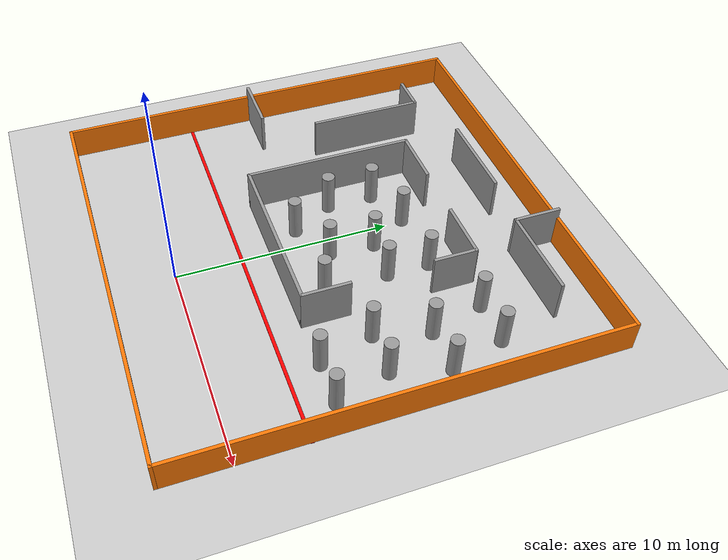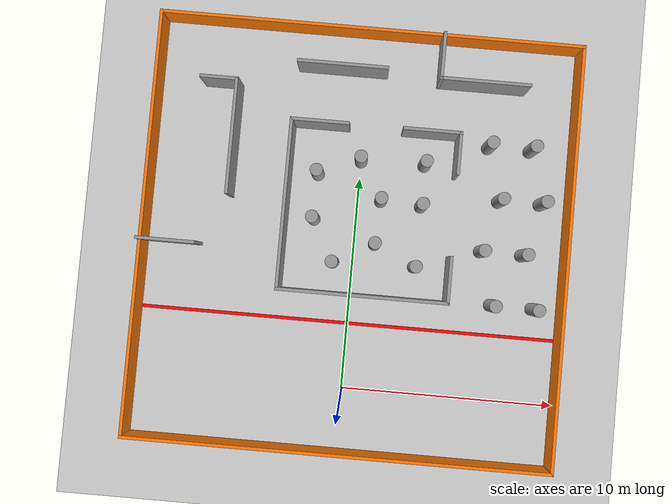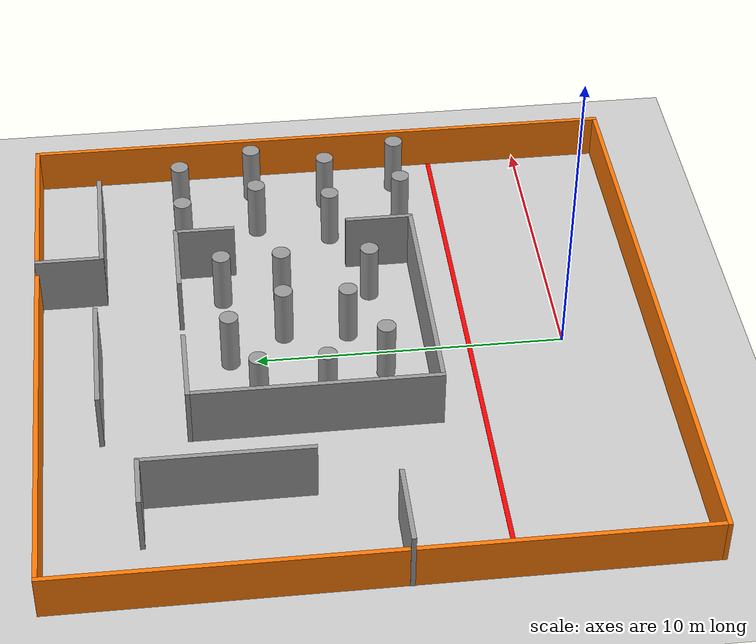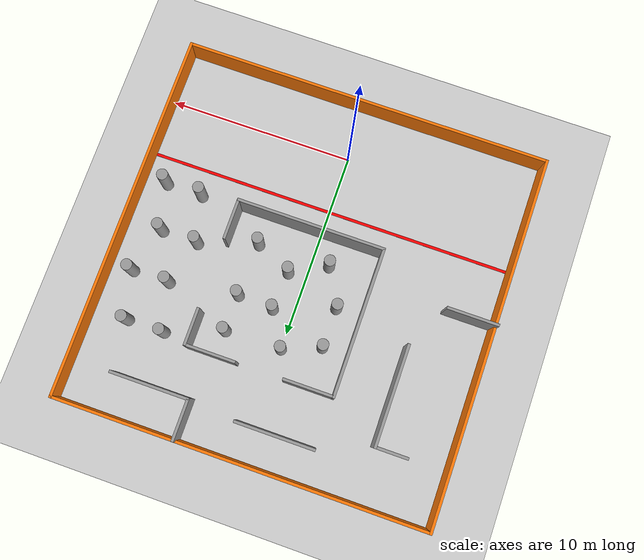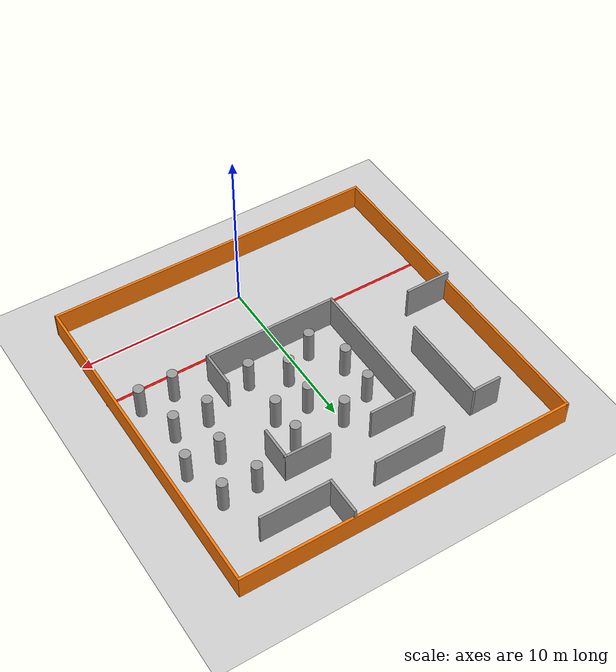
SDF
<sdf version="1.7">
 <world name="default">
  <light name="sun" type="directional">
   <pose>0 0 10 0 -0 0</pose>
   <diffuse>0.8 0.8 0.8 1</diffuse>
   <specular>0.2 0.2 0.2 1</specular>
   <attenuation>
    <range>1000</range>
    <constant>0.9</constant>
    <linear>0.01</linear>
    <quadratic>0.001</quadratic>
   </attenuation>
   <direction>-0.5 0.1 -0.9</direction>
   <spot><inner_angle>0</inner_angle><outer_angle>0</outer_angle><falloff>0</falloff></spot>
  </light>
  <model name="ground_plane">
   <static>1</static>
   <link name="link">
    <collision name="collision">
     <geometry><plane><normal>0 0 1</normal><size>100 100</size></plane></geometry>
     <surface>
      <contact><collide_bitmask>65535</collide_bitmask></contact>
      <friction><ode><mu>100</mu><mu2>50</mu2></ode></friction>
     </surface>
    </collision>
    <visual name="visual">
     <cast_shadows>0</cast_shadows>
     <geometry><plane><normal>0 0 1</normal><size>100 100</size></plane></geometry>
     <material>
      <script><uri>file://media/materials/scripts/gazebo.material</uri><name>Gazebo/Grey</name></script>
     </material>
    </visual>
   </link>
  </model>
  <gravity>0 0 -9.8</gravity>
  <magnetic_field>6e-06 2.3e-05 -4.2e-05</magnetic_field>
  <atmosphere type="adiabatic"/>
  <physics type="ode">
   <max_step_size>0.001</max_step_size>
   <real_time_factor>1</real_time_factor>
   <real_time_update_rate>1000</real_time_update_rate>
  </physics>
  <scene><ambient>0.4 0.4 0.4 1</ambient><background>0.7 0.7 0.7 1</background><shadows>1</shadows></scene>
  <spherical_coordinates>
   <surface_model>EARTH_WGS84</surface_model>
   <latitude_deg>0</latitude_deg>
   <longitude_deg>0</longitude_deg>
   <elevation>0</elevation>
   <heading_deg>0</heading_deg>
  </spherical_coordinates>
  <model name="SAFMC_WALL_similar">
   <pose>0.020465 7 0 0 -0 0</pose>
   <link name="Wall_0">
    <collision name="Wall_0_Collision">
     <geometry><box><size>20 0.15 1.5</size></box></geometry>
     <pose>0 0 0.75 0 -0 0</pose>
    </collision>
    <visual name="Wall_0_Visual">
     <pose>0 0 0.75 0 -0 0</pose>
     <geometry><box><size>20 0.15 1.5</size></box></geometry>
     <material>
      <script><uri>file://media/materials/scripts/gazebo.material</uri><name>Gazebo/Grey</name></script>
      <ambient>0.996078 0.47451 0.0196078 1</ambient>
     </material>
     <meta><layer>0</layer></meta>
    </visual>
    <pose>-0.003 -9.925 0 0 -0 0</pose>
   </link>
   <link name="Wall_10">
    <collision name="Wall_10_Collision">
     <geometry><box><size>2.75 0.15 2</size></box></geometry>
     <pose>0 0 1 0 -0 0</pose>
    </collision>
    <visual name="Wall_10_Visual">
     <pose>0 0 1 0 -0 0</pose>
     <geometry><box><size>2.75 0.15 2</size></box></geometry>
     <material>
      <script><uri>file://media/materials/scripts/gazebo.material</uri><name>Gazebo/Grey</name></script>
      <ambient>0 0 0 1</ambient>
     </material>
     <meta><layer>0</layer></meta>
    </visual>
    <pose>-8.642 -0.751 0 0 -0 0</pose>
   </link>
   <link name="Wall_12">
    <collision name="Wall_12_Collision">
     <geometry><box><size>1.75 0.15 2</size></box></geometry>
     <pose>0 0 1 0 -0 0</pose>
    </collision>
    <visual name="Wall_12_Visual">
     <pose>0 0 1 0 -0 0</pose>
     <geometry><box><size>1.75 0.15 2</size></box></geometry>
     <material>
      <script><uri>file://media/materials/scripts/gazebo.material</uri><name>Gazebo/Grey</name></script>
      <ambient>0 0 0 1</ambient>
     </material>
     <meta><layer>0</layer></meta>
    </visual>
    <pose>-6.88992 6.92788 0 0 -0 0</pose>
   </link>
   <link name="Wall_13">
    <collision name="Wall_13_Collision">
     <geometry><box><size>5.40588 0.15 2</size></box></geometry>
     <pose>0 0 1 0 -0 0</pose>
    </collision>
    <visual name="Wall_13_Visual">
     <pose>0 0 1 0 -0 0</pose>
     <geometry><box><size>5.40588 0.15 2</size></box></geometry>
     <material>
      <script><uri>file://media/materials/scripts/gazebo.material</uri><name>Gazebo/Grey</name></script>
      <ambient>0 0 0 1</ambient>
     </material>
     <meta><layer>0</layer></meta>
    </visual>
    <pose>-6.05047 4.29994 0 0 -0 -1.5708</pose>
   </link>
   <link name="Wall_15">
    <collision name="Wall_15_Collision">
     <geometry><box><size>2.25 0.15 2</size></box></geometry>
     <pose>0 0 1 0 -0 0</pose>
    </collision>
    <visual name="Wall_15_Visual">
     <pose>0 0 1 0 -0 0</pose>
     <geometry><box><size>2.25 0.15 2</size></box></geometry>
     <material>
      <script><uri>file://media/materials/scripts/gazebo.material</uri><name>Gazebo/Grey</name></script>
      <ambient>0 0 0 1</ambient>
     </material>
     <meta><layer>0</layer></meta>
    </visual>
    <pose>3.3575 8.83 0 0 -0 -1.5708</pose>
   </link>
   <link name="Wall_18">
    <collision name="Wall_18_Collision">
     <geometry><box><size>4.198 0.15 2</size></box></geometry>
     <pose>0 0 1 0 -0 0</pose>
    </collision>
    <visual name="Wall_18_Visual">
     <pose>0 0 1 0 -0 0</pose>
     <geometry><box><size>4.198 0.15 2</size></box></geometry>
     <material>
      <script><uri>file://media/materials/scripts/gazebo.material</uri><name>Gazebo/Grey</name></script>
      <ambient>0 0 0 1</ambient>
     </material>
     <meta><layer>0</layer></meta>
    </visual>
    <pose>5.416 7.78 0 0 -0 0</pose>
   </link>
   <link name="Wall_2">
    <collision name="Wall_2_Collision">
     <geometry><box><size>20 0.15 1.5</size></box></geometry>
     <pose>0 0 0.75 0 -0 0</pose>
    </collision>
    <visual name="Wall_2_Visual">
     <pose>0 0 0.75 0 -0 0</pose>
     <geometry><box><size>20 0.15 1.5</size></box></geometry>
     <material>
      <script><uri>file://media/materials/scripts/gazebo.material</uri><name>Gazebo/Grey</name></script>
      <ambient>0.996078 0.47451 0.0196078 1</ambient>
     </material>
     <meta><layer>0</layer></meta>
    </visual>
    <pose>-9.928 -0 0 0 -0 1.5708</pose>
   </link>
   <link name="Wall_20">
    <collision name="Wall_20_Collision">
     <geometry><box><size>4.25 0.15 2</size></box></geometry>
     <pose>0 0 1 0 -0 0</pose>
    </collision>
    <visual name="Wall_20_Visual">
     <pose>0 0 1 0 -0 0</pose>
     <geometry><box><size>4.25 0.15 2</size></box></geometry>
     <material>
      <script><uri>file://media/materials/scripts/gazebo.material</uri><name>Gazebo/Grey</name></script>
      <ambient>0 0 0 1</ambient>
     </material>
     <meta><layer>0</layer></meta>
    </visual>
    <pose>-1.2353 8.03112 0 0 -0 0</pose>
   </link>
   <link name="Wall_22">
    <collision name="Wall_22_Collision">
     <geometry><box><size>8 0.15 2</size></box></geometry>
     <pose>0 0 1 0 -0 0</pose>
    </collision>
    <visual name="Wall_22_Visual">
     <pose>0 0 1 0 -0 0</pose>
     <geometry><box><size>8 0.15 2</size></box></geometry>
     <material>
      <script><uri>file://media/materials/scripts/gazebo.material</uri><name>Gazebo/Grey</name></script>
      <ambient>0 0 0 1</ambient>
     </material>
     <meta><layer>0</layer></meta>
    </visual>
    <pose>-3.36412 1.386 0 0 -0 -1.5708</pose>
   </link>
   <link name="Wall_24">
    <collision name="Wall_24_Collision">
     <geometry><box><size>8 0.15 2</size></box></geometry>
     <pose>0 0 1 0 -0 0</pose>
    </collision>
    <visual name="Wall_24_Visual">
     <pose>0 0 1 0 -0 0</pose>
     <geometry><box><size>8 0.15 2</size></box></geometry>
     <material>
      <script><uri>file://media/materials/scripts/gazebo.material</uri><name>Gazebo/Grey</name></script>
      <ambient>0 0 0 1</ambient>
     </material>
     <meta><layer>0</layer></meta>
    </visual>
    <pose>0.560883 -2.539 0 0 -0 0</pose>
   </link>
   <link name="Wall_26">
    <collision name="Wall_26_Collision">
     <geometry><box><size>2.25 0.15 2</size></box></geometry>
     <pose>0 0 1 0 -0 0</pose>
    </collision>
    <visual name="Wall_26_Visual">
     <pose>0 0 1 0 -0 0</pose>
     <geometry><box><size>2.25 0.15 2</size></box></geometry>
     <material>
      <script><uri>file://media/materials/scripts/gazebo.material</uri><name>Gazebo/Grey</name></script>
      <ambient>0 0 0 1</ambient>
     </material>
     <meta><layer>0</layer></meta>
    </visual>
    <pose>4.48588 -1.489 0 0 -0 1.5708</pose>
   </link>
   <link name="Wall_28">
    <collision name="Wall_28_Collision">
     <geometry><box><size>2.75 0.15 2</size></box></geometry>
     <pose>0 0 1 0 -0 0</pose>
    </collision>
    <visual name="Wall_28_Visual">
     <pose>0 0 1 0 -0 0</pose>
     <geometry><box><size>2.75 0.15 2</size></box></geometry>
     <material>
      <script><uri>file://media/materials/scripts/gazebo.material</uri><name>Gazebo/Grey</name></script>
      <ambient>0 0 0 1</ambient>
     </material>
     <meta><layer>0</layer></meta>
    </visual>
    <pose>-2.06412 5.311 0 0 -0 0</pose>
   </link>
   <link name="Wall_30">
    <collision name="Wall_30_Collision">
     <geometry><box><size>2.75 0.15 2</size></box></geometry>
     <pose>0 0 1 0 -0 0</pose>
    </collision>
    <visual name="Wall_30_Visual">
     <pose>0 0 1 0 -0 0</pose>
     <geometry><box><size>2.75 0.15 2</size></box></geometry>
     <material>
      <script><uri>file://media/materials/scripts/gazebo.material</uri><name>Gazebo/Grey</name></script>
      <ambient>0 0 0 1</ambient>
     </material>
     <meta><layer>0</layer></meta>
    </visual>
    <pose>3.16318 5.3137 0 0 -0 0</pose>
   </link>
   <link name="Wall_31">
    <collision name="Wall_31_Collision">
     <geometry><box><size>2 0.15 2</size></box></geometry>
     <pose>0 0 1 0 -0 0</pose>
    </collision>
    <visual name="Wall_31_Visual">
     <pose>0 0 1 0 -0 0</pose>
     <geometry><box><size>2 0.15 2</size></box></geometry>
     <material>
      <script><uri>file://media/materials/scripts/gazebo.material</uri><name>Gazebo/Grey</name></script>
      <ambient>0 0 0 1</ambient>
     </material>
     <meta><layer>0</layer></meta>
    </visual>
    <pose>4.46318 4.3624 0 0 -0 -1.5708</pose>
   </link>
   <link name="Wall_4">
    <collision name="Wall_4_Collision">
     <geometry><box><size>20 0.15 1.5</size></box></geometry>
     <pose>0 0 0.75 0 -0 0</pose>
    </collision>
    <visual name="Wall_4_Visual">
     <pose>0 0 0.75 0 -0 0</pose>
     <geometry><box><size>20 0.15 1.5</size></box></geometry>
     <material>
      <script><uri>file://media/materials/scripts/gazebo.material</uri><name>Gazebo/Grey</name></script>
      <ambient>0.996078 0.47451 0.0196078 1</ambient>
     </material>
     <meta><layer>0</layer></meta>
    </visual>
    <pose>-0.003 9.925 0 0 -0 0</pose>
   </link>
   <link name="Wall_6">
    <collision name="Wall_6_Collision">
     <geometry><box><size>20 0.15 1.5</size></box></geometry>
     <pose>0 0 0.75 0 -0 0</pose>
    </collision>
    <visual name="Wall_6_Visual">
     <pose>0 0 0.75 0 -0 0</pose>
     <geometry><box><size>20 0.15 1.5</size></box></geometry>
     <material>
      <script><uri>file://media/materials/scripts/gazebo.material</uri><name>Gazebo/Grey</name></script>
      <ambient>0.996078 0.47451 0.0196078 1</ambient>
     </material>
     <meta><layer>0</layer></meta>
    </visual>
    <pose>9.922 -0 0 0 -0 -1.5708</pose>
   </link>
   <link name="Wall_8">
    <collision name="Wall_8_Collision">
     <geometry><box><size>20 0.15 0.01</size></box></geometry>
     <pose>0 0 0.005 0 -0 0</pose>
    </collision>
    <visual name="Wall_8_Visual">
     <pose>0 0 0.005 0 -0 0</pose>
     <geometry><box><size>20 0.15 0.01</size></box></geometry>
     <material>
      <script><uri>file://media/materials/scripts/gazebo.material</uri><name>Gazebo/Grey</name></script>
      <ambient>1 0 0 1</ambient>
     </material>
     <meta><layer>0</layer></meta>
    </visual>
    <pose>0.017 -3.925 0 0 -0 0</pose>
   </link>
   <static>1</static>
  </model>
  <model name="SAFMC_Pillar_clone_0_clone_clone_clone_0">
   <link name="link_3">
    <inertial>
     <mass>1</mass>
     <inertia><ixx>0.145833</ixx><ixy>0</ixy><ixz>0</ixz><iyy>0.145833</iyy><iyz>0</iyz><izz>0.125</izz></inertia>
    </inertial>
    <visual name="visual">
     <geometry><cylinder><radius>0.3</radius><length>2</length></cylinder></geometry>
     <material>
      <lighting>1</lighting>
      <script><uri>file://media/materials/scripts/gazebo.material</uri><name>Gazebo/Grey</name></script>
      <shader type="pixel"><normal_map>__default__</normal_map></shader>
      <ambient>0.3 0.3 0.3 1</ambient>
      <diffuse>0.7 0.7 0.7 1</diffuse>
      <specular>0.01 0.01 0.01 1</specular>
      <emissive>0 0 0 1</emissive>
     </material>
    </visual>
    <collision name="collision">
     <geometry><cylinder><radius>0.3</radius><length>2</length></cylinder></geometry>
     <surface>
      <friction>
       <ode><mu>1</mu><mu2>1</mu2><fdir1>0 0 0</fdir1><slip1>0</slip1><slip2>0</slip2></ode>
       <torsional>
        <coefficient>1</coefficient>
        <patch_radius>0</patch_radius>
        <surface_radius>0</surface_radius>
        <use_patch_radius>1</use_patch_radius>
        <ode><slip>0</slip></ode>
       </torsional>
      </friction>
      <bounce><restitution_coefficient>0</restitution_coefficient><threshold>1e+06</threshold></bounce>
      <contact>
       <collide_without_contact>0</collide_without_contact>
       <collide_without_contact_bitmask>1</collide_without_contact_bitmask>
       <collide_bitmask>1</collide_bitmask>
       <ode>
        <soft_cfm>0</soft_cfm>
        <soft_erp>0.2</soft_erp>
        <kp>1e+13</kp>
        <kd>1</kd>
        <max_vel>0.01</max_vel>
        <min_depth>0</min_depth>
       </ode>
       <bullet>
        <split_impulse>1</split_impulse>
        <split_impulse_penetration_threshold>-0.01</split_impulse_penetration_threshold>
        <soft_cfm>0</soft_cfm>
        <soft_erp>0.2</soft_erp>
        <kp>1e+13</kp>
        <kd>1</kd>
       </bullet>
      </contact>
     </surface>
    </collision>
   </link>
   <static>0</static>
   <pose>6.69705 4.51816 0.999997 0 -0 3.4e-05</pose>
  </model>
  <model name="SAFMC_Pillar_clone_0_clone_clone_clone_5">
   <link name="link_3">
    <inertial>
     <mass>1</mass>
     <inertia><ixx>0.145833</ixx><ixy>0</ixy><ixz>0</ixz><iyy>0.145833</iyy><iyz>0</iyz><izz>0.125</izz></inertia>
    </inertial>
    <visual name="visual">
     <geometry><cylinder><radius>0.3</radius><length>2</length></cylinder></geometry>
     <material>
      <lighting>1</lighting>
      <script><uri>file://media/materials/scripts/gazebo.material</uri><name>Gazebo/Grey</name></script>
      <shader type="pixel"><normal_map>__default__</normal_map></shader>
      <ambient>0.3 0.3 0.3 1</ambient>
      <diffuse>0.7 0.7 0.7 1</diffuse>
      <specular>0.01 0.01 0.01 1</specular>
      <emissive>0 0 0 1</emissive>
     </material>
    </visual>
    <collision name="collision">
     <geometry><cylinder><radius>0.3</radius><length>2</length></cylinder></geometry>
     <surface>
      <friction>
       <ode><mu>1</mu><mu2>1</mu2><fdir1>0 0 0</fdir1><slip1>0</slip1><slip2>0</slip2></ode>
       <torsional>
        <coefficient>1</coefficient>
        <patch_radius>0</patch_radius>
        <surface_radius>0</surface_radius>
        <use_patch_radius>1</use_patch_radius>
        <ode><slip>0</slip></ode>
       </torsional>
      </friction>
      <bounce><restitution_coefficient>0</restitution_coefficient><threshold>1e+06</threshold></bounce>
      <contact>
       <collide_without_contact>0</collide_without_contact>
       <collide_without_contact_bitmask>1</collide_without_contact_bitmask>
       <collide_bitmask>1</collide_bitmask>
       <ode>
        <soft_cfm>0</soft_cfm>
        <soft_erp>0.2</soft_erp>
        <kp>1e+13</kp>
        <kd>1</kd>
        <max_vel>0.01</max_vel>
        <min_depth>0</min_depth>
       </ode>
       <bullet>
        <split_impulse>1</split_impulse>
        <split_impulse_penetration_threshold>-0.01</split_impulse_penetration_threshold>
        <soft_cfm>0</soft_cfm>
        <soft_erp>0.2</soft_erp>
        <kp>1e+13</kp>
        <kd>1</kd>
       </bullet>
      </contact>
     </surface>
    </collision>
   </link>
   <static>0</static>
   <pose>8.68496 4.49929 0.999999 0 -0 3.4e-05</pose>
  </model>
  <model name="SAFMC_Pillar_clone_0_clone_clone_clone_1_clone_clone_clone_0_clone">
   <link name="link_3">
    <inertial>
     <mass>1</mass>
     <inertia><ixx>0.145833</ixx><ixy>0</ixy><ixz>0</ixz><iyy>0.145833</iyy><iyz>0</iyz><izz>0.125</izz></inertia>
    </inertial>
    <visual name="visual">
     <geometry><cylinder><radius>0.3</radius><length>2</length></cylinder></geometry>
     <material>
      <lighting>1</lighting>
      <script><uri>file://media/materials/scripts/gazebo.material</uri><name>Gazebo/Grey</name></script>
      <shader type="pixel"><normal_map>__default__</normal_map></shader>
      <ambient>0.3 0.3 0.3 1</ambient>
      <diffuse>0.7 0.7 0.7 1</diffuse>
      <specular>0.01 0.01 0.01 1</specular>
      <emissive>0 0 0 1</emissive>
     </material>
    </visual>
    <collision name="collision">
     <geometry><cylinder><radius>0.3</radius><length>2</length></cylinder></geometry>
     <surface>
      <friction>
       <ode><mu>1</mu><mu2>1</mu2><fdir1>0 0 0</fdir1><slip1>0</slip1><slip2>0</slip2></ode>
       <torsional>
        <coefficient>1</coefficient>
        <patch_radius>0</patch_radius>
        <surface_radius>0</surface_radius>
        <use_patch_radius>1</use_patch_radius>
        <ode><slip>0</slip></ode>
       </torsional>
      </friction>
      <bounce><restitution_coefficient>0</restitution_coefficient><threshold>1e+06</threshold></bounce>
      <contact>
       <collide_without_contact>0</collide_without_contact>
       <collide_without_contact_bitmask>1</collide_without_contact_bitmask>
       <collide_bitmask>1</collide_bitmask>
       <ode>
        <soft_cfm>0</soft_cfm>
        <soft_erp>0.2</soft_erp>
        <kp>1e+13</kp>
        <kd>1</kd>
        <max_vel>0.01</max_vel>
        <min_depth>0</min_depth>
       </ode>
       <bullet>
        <split_impulse>1</split_impulse>
        <split_impulse_penetration_threshold>-0.01</split_impulse_penetration_threshold>
        <soft_cfm>0</soft_cfm>
        <soft_erp>0.2</soft_erp>
        <kp>1e+13</kp>
        <kd>1</kd>
       </bullet>
      </contact>
     </surface>
    </collision>
   </link>
   <static>0</static>
   <pose>6.01253 7.02211 0.999999 0 -0 3.7e-05</pose>
  </model>
  <model name="SAFMC_Pillar_clone_0_clone_clone_clone_1_clone_clone_clone_0_clone_clone">
   <link name="link_3">
    <inertial>
     <mass>1</mass>
     <inertia><ixx>0.145833</ixx><ixy>0</ixy><ixz>0</ixz><iyy>0.145833</iyy><iyz>0</iyz><izz>0.125</izz></inertia>
    </inertial>
    <visual name="visual">
     <geometry><cylinder><radius>0.3</radius><length>2</length></cylinder></geometry>
     <material>
      <lighting>1</lighting>
      <script><uri>file://media/materials/scripts/gazebo.material</uri><name>Gazebo/Grey</name></script>
      <shader type="pixel"><normal_map>__default__</normal_map></shader>
      <ambient>0.3 0.3 0.3 1</ambient>
      <diffuse>0.7 0.7 0.7 1</diffuse>
      <specular>0.01 0.01 0.01 1</specular>
      <emissive>0 0 0 1</emissive>
     </material>
    </visual>
    <collision name="collision">
     <geometry><cylinder><radius>0.3</radius><length>2</length></cylinder></geometry>
     <surface>
      <friction>
       <ode><mu>1</mu><mu2>1</mu2><fdir1>0 0 0</fdir1><slip1>0</slip1><slip2>0</slip2></ode>
       <torsional>
        <coefficient>1</coefficient>
        <patch_radius>0</patch_radius>
        <surface_radius>0</surface_radius>
        <use_patch_radius>1</use_patch_radius>
        <ode><slip>0</slip></ode>
       </torsional>
      </friction>
      <bounce><restitution_coefficient>0</restitution_coefficient><threshold>1e+06</threshold></bounce>
      <contact>
       <collide_without_contact>0</collide_without_contact>
       <collide_without_contact_bitmask>1</collide_without_contact_bitmask>
       <collide_bitmask>1</collide_bitmask>
       <ode>
        <soft_cfm>0</soft_cfm>
        <soft_erp>0.2</soft_erp>
        <kp>1e+13</kp>
        <kd>1</kd>
        <max_vel>0.01</max_vel>
        <min_depth>0</min_depth>
       </ode>
       <bullet>
        <split_impulse>1</split_impulse>
        <split_impulse_penetration_threshold>-0.01</split_impulse_penetration_threshold>
        <soft_cfm>0</soft_cfm>
        <soft_erp>0.2</soft_erp>
        <kp>1e+13</kp>
        <kd>1</kd>
       </bullet>
      </contact>
     </surface>
    </collision>
   </link>
   <static>0</static>
   <pose>7.99662 6.99684 0.999999 0 -0 3.7e-05</pose>
  </model>
  <model name="SAFMC_Pillar_clone_0_clone_clone_clone_1_clone_clone_clone_0_clone_clone_0">
   <link name="link_3">
    <inertial>
     <mass>1</mass>
     <inertia><ixx>0.145833</ixx><ixy>0</ixy><ixz>0</ixz><iyy>0.145833</iyy><iyz>0</iyz><izz>0.125</izz></inertia>
    </inertial>
    <visual name="visual">
     <geometry><cylinder><radius>0.3</radius><length>2</length></cylinder></geometry>
     <material>
      <lighting>1</lighting>
      <script><uri>file://media/materials/scripts/gazebo.material</uri><name>Gazebo/Grey</name></script>
      <shader type="pixel"><normal_map>__default__</normal_map></shader>
      <ambient>0.3 0.3 0.3 1</ambient>
      <diffuse>0.7 0.7 0.7 1</diffuse>
      <specular>0.01 0.01 0.01 1</specular>
      <emissive>0 0 0 1</emissive>
     </material>
    </visual>
    <collision name="collision">
     <geometry><cylinder><radius>0.3</radius><length>2</length></cylinder></geometry>
     <surface>
      <friction>
       <ode><mu>1</mu><mu2>1</mu2><fdir1>0 0 0</fdir1><slip1>0</slip1><slip2>0</slip2></ode>
       <torsional>
        <coefficient>1</coefficient>
        <patch_radius>0</patch_radius>
        <surface_radius>0</surface_radius>
        <use_patch_radius>1</use_patch_radius>
        <ode><slip>0</slip></ode>
       </torsional>
      </friction>
      <bounce><restitution_coefficient>0</restitution_coefficient><threshold>1e+06</threshold></bounce>
      <contact>
       <collide_without_contact>0</collide_without_contact>
       <collide_without_contact_bitmask>1</collide_without_contact_bitmask>
       <collide_bitmask>1</collide_bitmask>
       <ode>
        <soft_cfm>0</soft_cfm>
        <soft_erp>0.2</soft_erp>
        <kp>1e+13</kp>
        <kd>1</kd>
        <max_vel>0.01</max_vel>
        <min_depth>0</min_depth>
       </ode>
       <bullet>
        <split_impulse>1</split_impulse>
        <split_impulse_penetration_threshold>-0.01</split_impulse_penetration_threshold>
        <soft_cfm>0</soft_cfm>
        <soft_erp>0.2</soft_erp>
        <kp>1e+13</kp>
        <kd>1</kd>
       </bullet>
      </contact>
     </surface>
    </collision>
   </link>
   <static>0</static>
   <pose>5.9959 12.0102 0.999991 0 -0 3.6e-05</pose>
  </model>
  <model name="SAFMC_Pillar_clone_0_clone_clone_clone_1_clone_clone_clone_0_clone_clone_1">
   <link name="link_3">
    <inertial>
     <mass>1</mass>
     <inertia><ixx>0.145833</ixx><ixy>0</ixy><ixz>0</ixz><iyy>0.145833</iyy><iyz>0</iyz><izz>0.125</izz></inertia>
    </inertial>
    <visual name="visual">
     <geometry><cylinder><radius>0.3</radius><length>2</length></cylinder></geometry>
     <material>
      <lighting>1</lighting>
      <script><uri>file://media/materials/scripts/gazebo.material</uri><name>Gazebo/Grey</name></script>
      <shader type="pixel"><normal_map>__default__</normal_map></shader>
      <ambient>0.3 0.3 0.3 1</ambient>
      <diffuse>0.7 0.7 0.7 1</diffuse>
      <specular>0.01 0.01 0.01 1</specular>
      <emissive>0 0 0 1</emissive>
     </material>
    </visual>
    <collision name="collision">
     <geometry><cylinder><radius>0.3</radius><length>2</length></cylinder></geometry>
     <surface>
      <friction>
       <ode><mu>1</mu><mu2>1</mu2><fdir1>0 0 0</fdir1><slip1>0</slip1><slip2>0</slip2></ode>
       <torsional>
        <coefficient>1</coefficient>
        <patch_radius>0</patch_radius>
        <surface_radius>0</surface_radius>
        <use_patch_radius>1</use_patch_radius>
        <ode><slip>0</slip></ode>
       </torsional>
      </friction>
      <bounce><restitution_coefficient>0</restitution_coefficient><threshold>1e+06</threshold></bounce>
      <contact>
       <collide_without_contact>0</collide_without_contact>
       <collide_without_contact_bitmask>1</collide_without_contact_bitmask>
       <collide_bitmask>1</collide_bitmask>
       <ode>
        <soft_cfm>0</soft_cfm>
        <soft_erp>0.2</soft_erp>
        <kp>1e+13</kp>
        <kd>1</kd>
        <max_vel>0.01</max_vel>
        <min_depth>0</min_depth>
       </ode>
       <bullet>
        <split_impulse>1</split_impulse>
        <split_impulse_penetration_threshold>-0.01</split_impulse_penetration_threshold>
        <soft_cfm>0</soft_cfm>
        <soft_erp>0.2</soft_erp>
        <kp>1e+13</kp>
        <kd>1</kd>
       </bullet>
      </contact>
     </surface>
    </collision>
   </link>
   <static>0</static>
   <pose>8.00007 12.0115 0.999991 0 -0 3.4e-05</pose>
  </model>
  <model name="SAFMC_Pillar_clone_0_clone_clone_clone_1_clone_clone_clone_0_clone_clone_2">
   <link name="link_3">
    <inertial>
     <mass>1</mass>
     <inertia><ixx>0.145833</ixx><ixy>0</ixy><ixz>0</ixz><iyy>0.145833</iyy><iyz>0</iyz><izz>0.125</izz></inertia>
    </inertial>
    <visual name="visual">
     <geometry><cylinder><radius>0.3</radius><length>2</length></cylinder></geometry>
     <material>
      <lighting>1</lighting>
      <script><uri>file://media/materials/scripts/gazebo.material</uri><name>Gazebo/Grey</name></script>
      <shader type="pixel"><normal_map>__default__</normal_map></shader>
      <ambient>0.3 0.3 0.3 1</ambient>
      <diffuse>0.7 0.7 0.7 1</diffuse>
      <specular>0.01 0.01 0.01 1</specular>
      <emissive>0 0 0 1</emissive>
     </material>
    </visual>
    <collision name="collision">
     <geometry><cylinder><radius>0.3</radius><length>2</length></cylinder></geometry>
     <surface>
      <friction>
       <ode><mu>1</mu><mu2>1</mu2><fdir1>0 0 0</fdir1><slip1>0</slip1><slip2>0</slip2></ode>
       <torsional>
        <coefficient>1</coefficient>
        <patch_radius>0</patch_radius>
        <surface_radius>0</surface_radius>
        <use_patch_radius>1</use_patch_radius>
        <ode><slip>0</slip></ode>
       </torsional>
      </friction>
      <bounce><restitution_coefficient>0</restitution_coefficient><threshold>1e+06</threshold></bounce>
      <contact>
       <collide_without_contact>0</collide_without_contact>
       <collide_without_contact_bitmask>1</collide_without_contact_bitmask>
       <collide_bitmask>1</collide_bitmask>
       <ode>
        <soft_cfm>0</soft_cfm>
        <soft_erp>0.2</soft_erp>
        <kp>1e+13</kp>
        <kd>1</kd>
        <max_vel>0.01</max_vel>
        <min_depth>0</min_depth>
       </ode>
       <bullet>
        <split_impulse>1</split_impulse>
        <split_impulse_penetration_threshold>-0.01</split_impulse_penetration_threshold>
        <soft_cfm>0</soft_cfm>
        <soft_erp>0.2</soft_erp>
        <kp>1e+13</kp>
        <kd>1</kd>
       </bullet>
      </contact>
     </surface>
    </collision>
   </link>
   <static>0</static>
   <pose>6.68564 9.47165 0.999991 0 -0 3.7e-05</pose>
  </model>
  <model name="SAFMC_Pillar_clone_0_clone_clone_clone_1_clone_clone_clone_0_clone_clone_3">
   <link name="link_3">
    <inertial>
     <mass>1</mass>
     <inertia><ixx>0.145833</ixx><ixy>0</ixy><ixz>0</ixz><iyy>0.145833</iyy><iyz>0</iyz><izz>0.125</izz></inertia>
    </inertial>
    <visual name="visual">
     <geometry><cylinder><radius>0.3</radius><length>2</length></cylinder></geometry>
     <material>
      <lighting>1</lighting>
      <script><uri>file://media/materials/scripts/gazebo.material</uri><name>Gazebo/Grey</name></script>
      <shader type="pixel"><normal_map>__default__</normal_map></shader>
      <ambient>0.3 0.3 0.3 1</ambient>
      <diffuse>0.7 0.7 0.7 1</diffuse>
      <specular>0.01 0.01 0.01 1</specular>
      <emissive>0 0 0 1</emissive>
     </material>
    </visual>
    <collision name="collision">
     <geometry><cylinder><radius>0.3</radius><length>2</length></cylinder></geometry>
     <surface>
      <friction>
       <ode><mu>1</mu><mu2>1</mu2><fdir1>0 0 0</fdir1><slip1>0</slip1><slip2>0</slip2></ode>
       <torsional>
        <coefficient>1</coefficient>
        <patch_radius>0</patch_radius>
        <surface_radius>0</surface_radius>
        <use_patch_radius>1</use_patch_radius>
        <ode><slip>0</slip></ode>
       </torsional>
      </friction>
      <bounce><restitution_coefficient>0</restitution_coefficient><threshold>1e+06</threshold></bounce>
      <contact>
       <collide_without_contact>0</collide_without_contact>
       <collide_without_contact_bitmask>1</collide_without_contact_bitmask>
       <collide_bitmask>1</collide_bitmask>
       <ode>
        <soft_cfm>0</soft_cfm>
        <soft_erp>0.2</soft_erp>
        <kp>1e+13</kp>
        <kd>1</kd>
        <max_vel>0.01</max_vel>
        <min_depth>0</min_depth>
       </ode>
       <bullet>
        <split_impulse>1</split_impulse>
        <split_impulse_penetration_threshold>-0.01</split_impulse_penetration_threshold>
        <soft_cfm>0</soft_cfm>
        <soft_erp>0.2</soft_erp>
        <kp>1e+13</kp>
        <kd>1</kd>
       </bullet>
      </contact>
     </surface>
    </collision>
   </link>
   <static>0</static>
   <pose>8.6846 9.50165 0.999999 0 -0 3.6e-05</pose>
  </model>
  <model name="SAFMC_Pillar_clone_0_clone_clone_clone_1_clone_clone_clone_0_clone_clone_0_clone">
   <link name="link_3">
    <inertial>
     <mass>1</mass>
     <inertia><ixx>0.145833</ixx><ixy>0</ixy><ixz>0</ixz><iyy>0.145833</iyy><iyz>0</iyz><izz>0.125</izz></inertia>
    </inertial>
    <visual name="visual">
     <geometry><cylinder><radius>0.3</radius><length>2</length></cylinder></geometry>
     <material>
      <lighting>1</lighting>
      <script><uri>file://media/materials/scripts/gazebo.material</uri><name>Gazebo/Grey</name></script>
      <shader type="pixel"><normal_map>__default__</normal_map></shader>
      <ambient>0.3 0.3 0.3 1</ambient>
      <diffuse>0.7 0.7 0.7 1</diffuse>
      <specular>0.01 0.01 0.01 1</specular>
      <emissive>0 0 0 1</emissive>
     </material>
    </visual>
    <collision name="collision">
     <geometry><cylinder><radius>0.3</radius><length>2</length></cylinder></geometry>
     <surface>
      <friction>
       <ode><mu>1</mu><mu2>1</mu2><fdir1>0 0 0</fdir1><slip1>0</slip1><slip2>0</slip2></ode>
       <torsional>
        <coefficient>1</coefficient>
        <patch_radius>0</patch_radius>
        <surface_radius>0</surface_radius>
        <use_patch_radius>1</use_patch_radius>
        <ode><slip>0</slip></ode>
       </torsional>
      </friction>
      <bounce><restitution_coefficient>0</restitution_coefficient><threshold>1e+06</threshold></bounce>
      <contact>
       <collide_without_contact>0</collide_without_contact>
       <collide_without_contact_bitmask>1</collide_without_contact_bitmask>
       <collide_bitmask>1</collide_bitmask>
       <ode>
        <soft_cfm>0</soft_cfm>
        <soft_erp>0.2</soft_erp>
        <kp>1e+13</kp>
        <kd>1</kd>
        <max_vel>0.01</max_vel>
        <min_depth>0</min_depth>
       </ode>
       <bullet>
        <split_impulse>1</split_impulse>
        <split_impulse_penetration_threshold>-0.01</split_impulse_penetration_threshold>
        <soft_cfm>0</soft_cfm>
        <soft_erp>0.2</soft_erp>
        <kp>1e+13</kp>
        <kd>1</kd>
       </bullet>
      </contact>
     </surface>
    </collision>
   </link>
   <static>0</static>
   <pose>-2.00184 10.0498 0.999991 0 -0 3.6e-05</pose>
  </model>
  <model name="SAFMC_Pillar_clone_0_clone_clone_clone_1_clone_clone_clone_0_clone_clone_0_clone_1">
   <link name="link_3">
    <inertial>
     <mass>1</mass>
     <inertia><ixx>0.145833</ixx><ixy>0</ixy><ixz>0</ixz><iyy>0.145833</iyy><iyz>0</iyz><izz>0.125</izz></inertia>
    </inertial>
    <visual name="visual">
     <geometry><cylinder><radius>0.3</radius><length>2</length></cylinder></geometry>
     <material>
      <lighting>1</lighting>
      <script><uri>file://media/materials/scripts/gazebo.material</uri><name>Gazebo/Grey</name></script>
      <shader type="pixel"><normal_map>__default__</normal_map></shader>
      <ambient>0.3 0.3 0.3 1</ambient>
      <diffuse>0.7 0.7 0.7 1</diffuse>
      <specular>0.01 0.01 0.01 1</specular>
      <emissive>0 0 0 1</emissive>
     </material>
    </visual>
    <collision name="collision">
     <geometry><cylinder><radius>0.3</radius><length>2</length></cylinder></geometry>
     <surface>
      <friction>
       <ode><mu>1</mu><mu2>1</mu2><fdir1>0 0 0</fdir1><slip1>0</slip1><slip2>0</slip2></ode>
       <torsional>
        <coefficient>1</coefficient>
        <patch_radius>0</patch_radius>
        <surface_radius>0</surface_radius>
        <use_patch_radius>1</use_patch_radius>
        <ode><slip>0</slip></ode>
       </torsional>
      </friction>
      <bounce><restitution_coefficient>0</restitution_coefficient><threshold>1e+06</threshold></bounce>
      <contact>
       <collide_without_contact>0</collide_without_contact>
       <collide_without_contact_bitmask>1</collide_without_contact_bitmask>
       <collide_bitmask>1</collide_bitmask>
       <ode>
        <soft_cfm>0</soft_cfm>
        <soft_erp>0.2</soft_erp>
        <kp>1e+13</kp>
        <kd>1</kd>
        <max_vel>0.01</max_vel>
        <min_depth>0</min_depth>
       </ode>
       <bullet>
        <split_impulse>1</split_impulse>
        <split_impulse_penetration_threshold>-0.01</split_impulse_penetration_threshold>
        <soft_cfm>0</soft_cfm>
        <soft_erp>0.2</soft_erp>
        <kp>1e+13</kp>
        <kd>1</kd>
       </bullet>
      </contact>
     </surface>
    </collision>
   </link>
   <static>0</static>
   <pose>0.966318 6.9328 0.999991 0 -0 3.5e-05</pose>
  </model>
  <model name="SAFMC_Pillar_clone_0_clone_clone_clone_1_clone_clone_clone_0_clone_clone_0_clone_2">
   <link name="link_3">
    <inertial>
     <mass>1</mass>
     <inertia><ixx>0.145833</ixx><ixy>0</ixy><ixz>0</ixz><iyy>0.145833</iyy><iyz>0</iyz><izz>0.125</izz></inertia>
    </inertial>
    <visual name="visual">
     <geometry><cylinder><radius>0.3</radius><length>2</length></cylinder></geometry>
     <material>
      <lighting>1</lighting>
      <script><uri>file://media/materials/scripts/gazebo.material</uri><name>Gazebo/Grey</name></script>
      <shader type="pixel"><normal_map>__default__</normal_map></shader>
      <ambient>0.3 0.3 0.3 1</ambient>
      <diffuse>0.7 0.7 0.7 1</diffuse>
      <specular>0.01 0.01 0.01 1</specular>
      <emissive>0 0 0 1</emissive>
     </material>
    </visual>
    <collision name="collision">
     <geometry><cylinder><radius>0.3</radius><length>2</length></cylinder></geometry>
     <surface>
      <friction>
       <ode><mu>1</mu><mu2>1</mu2><fdir1>0 0 0</fdir1><slip1>0</slip1><slip2>0</slip2></ode>
       <torsional>
        <coefficient>1</coefficient>
        <patch_radius>0</patch_radius>
        <surface_radius>0</surface_radius>
        <use_patch_radius>1</use_patch_radius>
        <ode><slip>0</slip></ode>
       </torsional>
      </friction>
      <bounce><restitution_coefficient>0</restitution_coefficient><threshold>1e+06</threshold></bounce>
      <contact>
       <collide_without_contact>0</collide_without_contact>
       <collide_without_contact_bitmask>1</collide_without_contact_bitmask>
       <collide_bitmask>1</collide_bitmask>
       <ode>
        <soft_cfm>0</soft_cfm>
        <soft_erp>0.2</soft_erp>
        <kp>1e+13</kp>
        <kd>1</kd>
        <max_vel>0.01</max_vel>
        <min_depth>0</min_depth>
       </ode>
       <bullet>
        <split_impulse>1</split_impulse>
        <split_impulse_penetration_threshold>-0.01</split_impulse_penetration_threshold>
        <soft_cfm>0</soft_cfm>
        <soft_erp>0.2</soft_erp>
        <kp>1e+13</kp>
        <kd>1</kd>
       </bullet>
      </contact>
     </surface>
    </collision>
   </link>
   <static>0</static>
   <pose>2.92512 6.01352 0.999999 0 -0 3.5e-05</pose>
  </model>
  <model name="SAFMC_Pillar_clone_0_clone_clone_clone_1_clone_clone_clone_0_clone_clone_0_clone_3">
   <link name="link_3">
    <inertial>
     <mass>1</mass>
     <inertia><ixx>0.145833</ixx><ixy>0</ixy><ixz>0</ixz><iyy>0.145833</iyy><iyz>0</iyz><izz>0.125</izz></inertia>
    </inertial>
    <visual name="visual">
     <geometry><cylinder><radius>0.3</radius><length>2</length></cylinder></geometry>
     <material>
      <lighting>1</lighting>
      <script><uri>file://media/materials/scripts/gazebo.material</uri><name>Gazebo/Grey</name></script>
      <shader type="pixel"><normal_map>__default__</normal_map></shader>
      <ambient>0.3 0.3 0.3 1</ambient>
      <diffuse>0.7 0.7 0.7 1</diffuse>
      <specular>0.01 0.01 0.01 1</specular>
      <emissive>0 0 0 1</emissive>
     </material>
    </visual>
    <collision name="collision">
     <geometry><cylinder><radius>0.3</radius><length>2</length></cylinder></geometry>
     <surface>
      <friction>
       <ode><mu>1</mu><mu2>1</mu2><fdir1>0 0 0</fdir1><slip1>0</slip1><slip2>0</slip2></ode>
       <torsional>
        <coefficient>1</coefficient>
        <patch_radius>0</patch_radius>
        <surface_radius>0</surface_radius>
        <use_patch_radius>1</use_patch_radius>
        <ode><slip>0</slip></ode>
       </torsional>
      </friction>
      <bounce><restitution_coefficient>0</restitution_coefficient><threshold>1e+06</threshold></bounce>
      <contact>
       <collide_without_contact>0</collide_without_contact>
       <collide_without_contact_bitmask>1</collide_without_contact_bitmask>
       <collide_bitmask>1</collide_bitmask>
       <ode>
        <soft_cfm>0</soft_cfm>
        <soft_erp>0.2</soft_erp>
        <kp>1e+13</kp>
        <kd>1</kd>
        <max_vel>0.01</max_vel>
        <min_depth>0</min_depth>
       </ode>
       <bullet>
        <split_impulse>1</split_impulse>
        <split_impulse_penetration_threshold>-0.01</split_impulse_penetration_threshold>
        <soft_cfm>0</soft_cfm>
        <soft_erp>0.2</soft_erp>
        <kp>1e+13</kp>
        <kd>1</kd>
       </bullet>
      </contact>
     </surface>
    </collision>
   </link>
   <static>0</static>
   <pose>-0.944272 5.91759 0.999999 0 -0 3.5e-05</pose>
  </model>
  <model name="SAFMC_Pillar_clone_0_clone_clone_clone_1_clone_clone_clone_0_clone_clone_0_clone_4">
   <link name="link_3">
    <inertial>
     <mass>1</mass>
     <inertia><ixx>0.145833</ixx><ixy>0</ixy><ixz>0</ixz><iyy>0.145833</iyy><iyz>0</iyz><izz>0.125</izz></inertia>
    </inertial>
    <visual name="visual">
     <geometry><cylinder><radius>0.3</radius><length>2</length></cylinder></geometry>
     <material>
      <lighting>1</lighting>
      <script><uri>file://media/materials/scripts/gazebo.material</uri><name>Gazebo/Grey</name></script>
      <shader type="pixel"><normal_map>__default__</normal_map></shader>
      <ambient>0.3 0.3 0.3 1</ambient>
      <diffuse>0.7 0.7 0.7 1</diffuse>
      <specular>0.01 0.01 0.01 1</specular>
      <emissive>0 0 0 1</emissive>
     </material>
    </visual>
    <collision name="collision">
     <geometry><cylinder><radius>0.3</radius><length>2</length></cylinder></geometry>
     <surface>
      <friction>
       <ode><mu>1</mu><mu2>1</mu2><fdir1>0 0 0</fdir1><slip1>0</slip1><slip2>0</slip2></ode>
       <torsional>
        <coefficient>1</coefficient>
        <patch_radius>0</patch_radius>
        <surface_radius>0</surface_radius>
        <use_patch_radius>1</use_patch_radius>
        <ode><slip>0</slip></ode>
       </torsional>
      </friction>
      <bounce><restitution_coefficient>0</restitution_coefficient><threshold>1e+06</threshold></bounce>
      <contact>
       <collide_without_contact>0</collide_without_contact>
       <collide_without_contact_bitmask>1</collide_without_contact_bitmask>
       <collide_bitmask>1</collide_bitmask>
       <ode>
        <soft_cfm>0</soft_cfm>
        <soft_erp>0.2</soft_erp>
        <kp>1e+13</kp>
        <kd>1</kd>
        <max_vel>0.01</max_vel>
        <min_depth>0</min_depth>
       </ode>
       <bullet>
        <split_impulse>1</split_impulse>
        <split_impulse_penetration_threshold>-0.01</split_impulse_penetration_threshold>
        <soft_cfm>0</soft_cfm>
        <soft_erp>0.2</soft_erp>
        <kp>1e+13</kp>
        <kd>1</kd>
       </bullet>
      </contact>
     </surface>
    </collision>
   </link>
   <static>0</static>
   <pose>1.08777 9.01487 0.999991 0 -0 3.4e-05</pose>
  </model>
  <model name="SAFMC_Pillar_clone_0_clone_clone_clone_1_clone_clone_clone_0_clone_clone_0_clone_5">
   <link name="link_3">
    <inertial>
     <mass>1</mass>
     <inertia><ixx>0.145833</ixx><ixy>0</ixy><ixz>0</ixz><iyy>0.145833</iyy><iyz>0</iyz><izz>0.125</izz></inertia>
    </inertial>
    <visual name="visual">
     <geometry><cylinder><radius>0.3</radius><length>2</length></cylinder></geometry>
     <material>
      <lighting>1</lighting>
      <script><uri>file://media/materials/scripts/gazebo.material</uri><name>Gazebo/Grey</name></script>
      <shader type="pixel"><normal_map>__default__</normal_map></shader>
      <ambient>0.3 0.3 0.3 1</ambient>
      <diffuse>0.7 0.7 0.7 1</diffuse>
      <specular>0.01 0.01 0.01 1</specular>
      <emissive>0 0 0 1</emissive>
     </material>
    </visual>
    <collision name="collision">
     <geometry><cylinder><radius>0.3</radius><length>2</length></cylinder></geometry>
     <surface>
      <friction>
       <ode><mu>1</mu><mu2>1</mu2><fdir1>0 0 0</fdir1><slip1>0</slip1><slip2>0</slip2></ode>
       <torsional>
        <coefficient>1</coefficient>
        <patch_radius>0</patch_radius>
        <surface_radius>0</surface_radius>
        <use_patch_radius>1</use_patch_radius>
        <ode><slip>0</slip></ode>
       </torsional>
      </friction>
      <bounce><restitution_coefficient>0</restitution_coefficient><threshold>1e+06</threshold></bounce>
      <contact>
       <collide_without_contact>0</collide_without_contact>
       <collide_without_contact_bitmask>1</collide_without_contact_bitmask>
       <collide_bitmask>1</collide_bitmask>
       <ode>
        <soft_cfm>0</soft_cfm>
        <soft_erp>0.2</soft_erp>
        <kp>1e+13</kp>
        <kd>1</kd>
        <max_vel>0.01</max_vel>
        <min_depth>0</min_depth>
       </ode>
       <bullet>
        <split_impulse>1</split_impulse>
        <split_impulse_penetration_threshold>-0.01</split_impulse_penetration_threshold>
        <soft_cfm>0</soft_cfm>
        <soft_erp>0.2</soft_erp>
        <kp>1e+13</kp>
        <kd>1</kd>
       </bullet>
      </contact>
     </surface>
    </collision>
   </link>
   <static>0</static>
   <pose>3.01778 10.891 0.999999 0 -0 3.4e-05</pose>
  </model>
  <model name="SAFMC_Pillar_clone_0_clone_clone_clone_1_clone_clone_clone_0_clone_clone_0_clone_0">
   <link name="link_3">
    <inertial>
     <mass>1</mass>
     <inertia><ixx>0.145833</ixx><ixy>0</ixy><ixz>0</ixz><iyy>0.145833</iyy><iyz>0</iyz><izz>0.125</izz></inertia>
    </inertial>
    <visual name="visual">
     <geometry><cylinder><radius>0.3</radius><length>2</length></cylinder></geometry>
     <material>
      <lighting>1</lighting>
      <script><uri>file://media/materials/scripts/gazebo.material</uri><name>Gazebo/Grey</name></script>
      <shader type="pixel"><normal_map>__default__</normal_map></shader>
      <ambient>0.3 0.3 0.3 1</ambient>
      <diffuse>0.7 0.7 0.7 1</diffuse>
      <specular>0.01 0.01 0.01 1</specular>
      <emissive>0 0 0 1</emissive>
     </material>
    </visual>
    <collision name="collision">
     <geometry><cylinder><radius>0.3</radius><length>2</length></cylinder></geometry>
     <surface>
      <friction>
       <ode><mu>1</mu><mu2>1</mu2><fdir1>0 0 0</fdir1><slip1>0</slip1><slip2>0</slip2></ode>
       <torsional>
        <coefficient>1</coefficient>
        <patch_radius>0</patch_radius>
        <surface_radius>0</surface_radius>
        <use_patch_radius>1</use_patch_radius>
        <ode><slip>0</slip></ode>
       </torsional>
      </friction>
      <bounce><restitution_coefficient>0</restitution_coefficient><threshold>1e+06</threshold></bounce>
      <contact>
       <collide_without_contact>0</collide_without_contact>
       <collide_without_contact_bitmask>1</collide_without_contact_bitmask>
       <collide_bitmask>1</collide_bitmask>
       <ode>
        <soft_cfm>0</soft_cfm>
        <soft_erp>0.2</soft_erp>
        <kp>1e+13</kp>
        <kd>1</kd>
        <max_vel>0.01</max_vel>
        <min_depth>0</min_depth>
       </ode>
       <bullet>
        <split_impulse>1</split_impulse>
        <split_impulse_penetration_threshold>-0.01</split_impulse_penetration_threshold>
        <soft_cfm>0</soft_cfm>
        <soft_erp>0.2</soft_erp>
        <kp>1e+13</kp>
        <kd>1</kd>
       </bullet>
      </contact>
     </surface>
    </collision>
   </link>
   <static>0</static>
   <pose>-2.02107 7.89023 0.999991 0 -0 3.3e-05</pose>
  </model>
  <model name="SAFMC_Pillar_clone_0_clone_clone_clone_1_clone_clone_clone_0_clone_clone_0_clone_6">
   <link name="link_3">
    <inertial>
     <mass>1</mass>
     <inertia><ixx>0.145833</ixx><ixy>0</ixy><ixz>0</ixz><iyy>0.145833</iyy><iyz>0</iyz><izz>0.125</izz></inertia>
    </inertial>
    <visual name="visual">
     <geometry><cylinder><radius>0.3</radius><length>2</length></cylinder></geometry>
     <material>
      <lighting>1</lighting>
      <script><uri>file://media/materials/scripts/gazebo.material</uri><name>Gazebo/Grey</name></script>
      <shader type="pixel"><normal_map>__default__</normal_map></shader>
      <ambient>0.3 0.3 0.3 1</ambient>
      <diffuse>0.7 0.7 0.7 1</diffuse>
      <specular>0.01 0.01 0.01 1</specular>
      <emissive>0 0 0 1</emissive>
     </material>
    </visual>
    <collision name="collision">
     <geometry><cylinder><radius>0.3</radius><length>2</length></cylinder></geometry>
     <surface>
      <friction>
       <ode><mu>1</mu><mu2>1</mu2><fdir1>0 0 0</fdir1><slip1>0</slip1><slip2>0</slip2></ode>
       <torsional>
        <coefficient>1</coefficient>
        <patch_radius>0</patch_radius>
        <surface_radius>0</surface_radius>
        <use_patch_radius>1</use_patch_radius>
        <ode><slip>0</slip></ode>
       </torsional>
      </friction>
      <bounce><restitution_coefficient>0</restitution_coefficient><threshold>1e+06</threshold></bounce>
      <contact>
       <collide_without_contact>0</collide_without_contact>
       <collide_without_contact_bitmask>1</collide_without_contact_bitmask>
       <collide_bitmask>1</collide_bitmask>
       <ode>
        <soft_cfm>0</soft_cfm>
        <soft_erp>0.2</soft_erp>
        <kp>1e+13</kp>
        <kd>1</kd>
        <max_vel>0.01</max_vel>
        <min_depth>0</min_depth>
       </ode>
       <bullet>
        <split_impulse>1</split_impulse>
        <split_impulse_penetration_threshold>-0.01</split_impulse_penetration_threshold>
        <soft_cfm>0</soft_cfm>
        <soft_erp>0.2</soft_erp>
        <kp>1e+13</kp>
        <kd>1</kd>
       </bullet>
      </contact>
     </surface>
    </collision>
   </link>
   <static>0</static>
   <pose>-0.007691 10.8368 0.999999 0 -0 3.7e-05</pose>
  </model>
  <model name="SAFMC_Pillar_clone_0_clone_clone_clone_1_clone_clone_clone_0_clone_clone_0_clone_7">
   <link name="link_3">
    <inertial>
     <mass>1</mass>
     <inertia><ixx>0.145833</ixx><ixy>0</ixy><ixz>0</ixz><iyy>0.145833</iyy><iyz>0</iyz><izz>0.125</izz></inertia>
    </inertial>
    <visual name="visual">
     <geometry><cylinder><radius>0.3</radius><length>2</length></cylinder></geometry>
     <material>
      <lighting>1</lighting>
      <script><uri>file://media/materials/scripts/gazebo.material</uri><name>Gazebo/Grey</name></script>
      <shader type="pixel"><normal_map>__default__</normal_map></shader>
      <ambient>0.3 0.3 0.3 1</ambient>
      <diffuse>0.7 0.7 0.7 1</diffuse>
      <specular>0.01 0.01 0.01 1</specular>
      <emissive>0 0 0 1</emissive>
     </material>
    </visual>
    <collision name="collision">
     <geometry><cylinder><radius>0.3</radius><length>2</length></cylinder></geometry>
     <surface>
      <friction>
       <ode><mu>1</mu><mu2>1</mu2><fdir1>0 0 0</fdir1><slip1>0</slip1><slip2>0</slip2></ode>
       <torsional>
        <coefficient>1</coefficient>
        <patch_radius>0</patch_radius>
        <surface_radius>0</surface_radius>
        <use_patch_radius>1</use_patch_radius>
        <ode><slip>0</slip></ode>
       </torsional>
      </friction>
      <bounce><restitution_coefficient>0</restitution_coefficient><threshold>1e+06</threshold></bounce>
      <contact>
       <collide_without_contact>0</collide_without_contact>
       <collide_without_contact_bitmask>1</collide_without_contact_bitmask>
       <collide_bitmask>1</collide_bitmask>
       <ode>
        <soft_cfm>0</soft_cfm>
        <soft_erp>0.2</soft_erp>
        <kp>1e+13</kp>
        <kd>1</kd>
        <max_vel>0.01</max_vel>
        <min_depth>0</min_depth>
       </ode>
       <bullet>
        <split_impulse>1</split_impulse>
        <split_impulse_penetration_threshold>-0.01</split_impulse_penetration_threshold>
        <soft_cfm>0</soft_cfm>
        <soft_erp>0.2</soft_erp>
        <kp>1e+13</kp>
        <kd>1</kd>
       </bullet>
      </contact>
     </surface>
    </collision>
   </link>
   <static>0</static>
   <pose>3.01436 8.91732 0.999999 0 -0 3.6e-05</pose>
  </model>
 </world>
</sdf>
